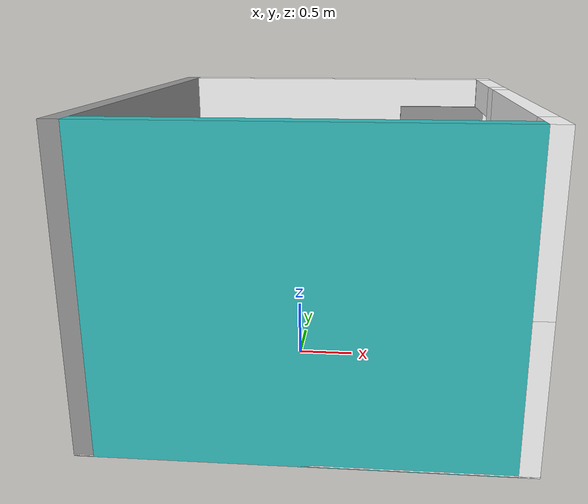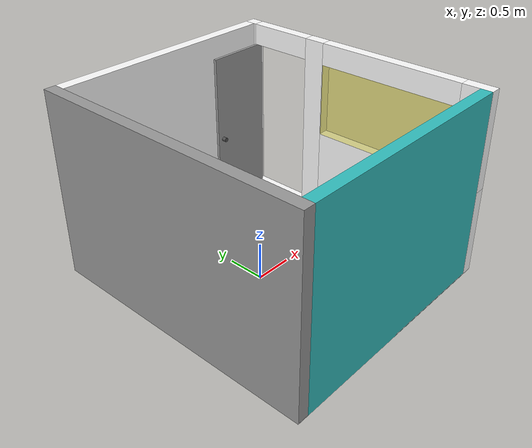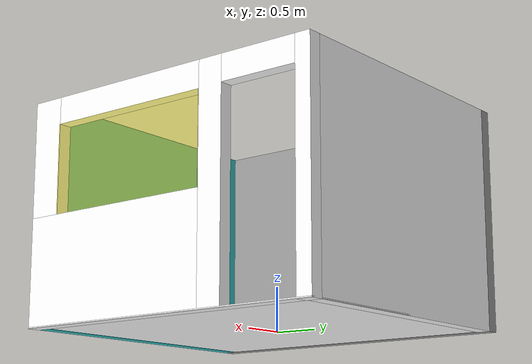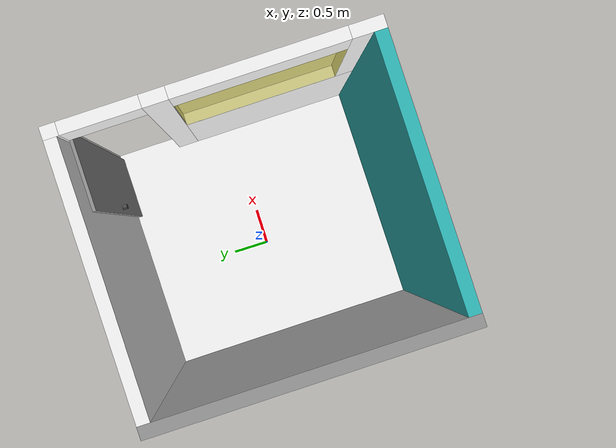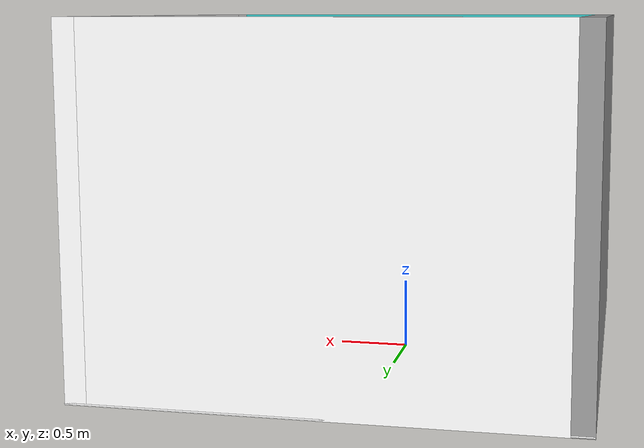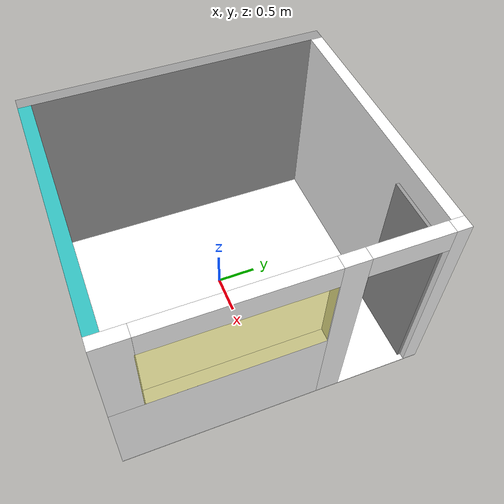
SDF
<?xml version='1.0'?>
<sdf version='1.6'>
  <model name='patient_room_small'>
    <pose frame=''>-0.37 0 0 0 0 1.571</pose>
    <link name='Floor'>
      <collision name='Floor_Collision'>
        <geometry>
          <box>
            <size>3.75 3.4 0.01</size>
          </box>
        </geometry>
        <pose frame=''>0 0 0 0 -0 0</pose>
      </collision>
      <visual name='Floor_Visual'>
        <pose frame=''>0 0 0 0 -0 0</pose>
        <geometry>
          <box>
            <size>3.75 3.4 0.01</size>
          </box>
        </geometry>
        <material>
          <script>
            <uri>model://patient_room_small/materials/scripts</uri>
            <uri>model://patient_room_small/materials/textures</uri>
            <name>Floor/Image</name>
          </script>
          <ambient>1 1 1 1</ambient>
        </material>
        <meta>
          <layer>0</layer>
        </meta>
      </visual>
      <pose frame=''>0 -0.59 0.01 0 -0 0</pose>
    </link>
    <link name='Wall_0'>
      <collision name='Wall_0_Collision'>
        <geometry>
          <box>
            <size>3.75 0.15 2.5</size>
          </box>
        </geometry>
        <pose frame=''>0 0 1.25 0 -0 0</pose>
      </collision>
      <visual name='Wall_0_Visual'>
        <pose frame=''>0 0 1.25 0 -0 0</pose>
        <geometry>
          <box>
            <size>3.75 0.15 2.5</size>
          </box>
        </geometry>
        <material>
          <script>
            <uri>file://media/materials/scripts/gazebo.material</uri>
            <name>Gazebo/Grey</name>
          </script>
          <ambient>1 1 1 1</ambient>
        </material>
        <meta>
          <layer>0</layer>
        </meta>
      </visual>
      <pose frame=''>0 1.0375 0 0 -0 0</pose>
    </link>
    <link name='Wall_1'>
      <collision name='Wall_1_Collision'>
        <geometry>
          <box>
            <size>3.1 0.15 2.5</size>
          </box>
        </geometry>
        <pose frame=''>0 0 1.25 0 -0 0</pose>
      </collision>
      <visual name='Wall_1_Visual'>
        <pose frame=''>0 0 1.25 0 -0 0</pose>
        <geometry>
          <box>
            <size>3.1 0.15 2.5</size>
          </box>
        </geometry>
        <material>
          <script>
            <uri>model://patient_room_small/materials/scripts</uri>
            <uri>model://patient_room_small/materials/textures</uri>
            <name>Wall/Image</name>
          </script>
          <ambient>1 1 1 1</ambient>
        </material>
        <meta>
          <layer>0</layer>
        </meta>
      </visual>
      <pose frame=''>1.8 -0.5875 0 0 -0 -1.5708</pose>
    </link>
    <link name='Wall_2'>
      <pose frame=''>0 -2.2125 0 0 -0 3.14159</pose>
      <visual name='Wall_2_Visual_0'>
        <pose frame=''>-1.7875 0 1.25 0 -0 0</pose>
        <geometry>
          <box>
            <size>0.175 0.15 2.5</size>
          </box>
        </geometry>
        <material>
          <script>
            <uri>model://patient_room_small/materials/scripts</uri>
            <uri>model://patient_room_small/materials/textures</uri>
            <name>Wall/Image</name>
          </script>
          <ambient>1 1 1 1</ambient>
        </material>
        <meta>
          <layer>0</layer>
        </meta>
      </visual>
      <collision name='Wall_2_Collision_0'>
        <geometry>
          <box>
            <size>0.175 0.15 2.5</size>
          </box>
        </geometry>
        <pose frame=''>-1.7875 0 1.25 0 -0 0</pose>
      </collision>
      <visual name='Wall_2_Visual_1'>
        <pose frame=''>0.0875 0 0.005 0 -0 0</pose>
        <geometry>
          <box>
            <size>3.575 0.15 0.01</size>
          </box>
        </geometry>
        <material>
          <script>
            <uri>model://patient_room_small/materials/scripts</uri>
            <uri>model://patient_room_small/materials/textures</uri>
            <name>Wall/Image</name>
          </script>
          <ambient>1 1 1 1</ambient>
        </material>
        <meta>
          <layer>0</layer>
        </meta>
      </visual>
      <collision name='Wall_2_Collision_1'>
        <geometry>
          <box>
            <size>3.575 0.15 0.01</size>
          </box>
        </geometry>
        <pose frame=''>0.0875 0 0.005 0 -0 0</pose>
      </collision>
      <visual name='Wall_2_Visual_2'>
        <pose frame=''>-0.655 0 1.255 0 -0 0</pose>
        <geometry>
          <box>
            <size>0.29 0.15 2.49</size>
          </box>
        </geometry>
        <material>
          <script>
            <uri>model://patient_room_small/materials/scripts</uri>
            <uri>model://patient_room_small/materials/textures</uri>
            <name>Wall/Image</name>
          </script>
          <ambient>1 1 1 1</ambient>
        </material>
        <meta>
          <layer>0</layer>
        </meta>
      </visual>
      <collision name='Wall_2_Collision_2'>
        <geometry>
          <box>
            <size>0.29 0.15 2.49</size>
          </box>
        </geometry>
        <pose frame=''>-0.655 0 1.255 0 -0 0</pose>
      </collision>
      <visual name='Wall_2_Visual_3'>
        <pose frame=''>0.6825 0 0.605 0 -0 0</pose>
        <geometry>
          <box>
            <size>2.385 0.15 1.19</size>
          </box>
        </geometry>
        <material>
          <script>
            <uri>model://patient_room_small/materials/scripts</uri>
            <uri>model://patient_room_small/materials/textures</uri>
            <name>Wall/Image</name>
          </script>
          <ambient>1 1 1 1</ambient>
        </material>
        <meta>
          <layer>0</layer>
        </meta>
      </visual>
      <collision name='Wall_2_Collision_3'>
        <geometry>
          <box>
            <size>2.385 0.15 1.19</size>
          </box>
        </geometry>
        <pose frame=''>0.6825 0 0.605 0 -0 0</pose>
      </collision>
      <visual name='Wall_2_Visual_4'>
        <pose frame=''>1.6825 0 1.85 0 -0 0</pose>
        <geometry>
          <box>
            <size>0.385 0.15 1.3</size>
          </box>
        </geometry>
        <material>
          <script>
            <uri>model://patient_room_small/materials/scripts</uri>
            <uri>model://patient_room_small/materials/textures</uri>
            <name>Wall/Image</name>
          </script>
          <ambient>1 1 1 1</ambient>
        </material>
        <meta>
          <layer>0</layer>
        </meta>
      </visual>
      <collision name='Wall_2_Collision_4'>
        <geometry>
          <box>
            <size>0.385 0.15 1.3</size>
          </box>
        </geometry>
        <pose frame=''>1.6825 0 1.85 0 -0 0</pose>
      </collision>
      <visual name='Wall_2_Visual_5'>
        <pose frame=''>0.49 0 2.35 0 -0 0</pose>
        <geometry>
          <box>
            <size>2 0.15 0.3</size>
          </box>
        </geometry>
        <material>
          <script>
            <uri>model://patient_room_small/materials/scripts</uri>
            <uri>model://patient_room_small/materials/textures</uri>
            <name>Wall/Image</name>
          </script>
          <ambient>1 1 1 1</ambient>
        </material>
        <meta>
          <layer>0</layer>
        </meta>
      </visual>
      <collision name='Wall_2_Collision_5'>
        <geometry>
          <box>
            <size>2 0.15 0.3</size>
          </box>
        </geometry>
        <pose frame=''>0.49 0 2.35 0 -0 0</pose>
      </collision>
      <visual name='Wall_2_Visual_6'>
        <pose frame=''>-1.25 0 2.355 0 -0 0</pose>
        <geometry>
          <box>
            <size>0.9 0.15 0.29</size>
          </box>
        </geometry>
        <material>
          <script>
            <uri>model://patient_room_small/materials/scripts</uri>
            <uri>model://patient_room_small/materials/textures</uri>
            <name>Wall/Image</name>
          </script>
          <ambient>1 1 1 1</ambient>
        </material>
        <meta>
          <layer>0</layer>
        </meta>
      </visual>
      <collision name='Wall_2_Collision_6'>
        <geometry>
          <box>
            <size>0.9 0.15 0.29</size>
          </box>
        </geometry>
        <pose frame=''>-1.25 0 2.355 0 -0 0</pose>
      </collision>
      <visual name='Wall_2_Window_Visual'>
        <pose frame=''>0.50 0 1.70 0 -0 1.571</pose>
        <geometry>
          <box>
            <size>0.15 2 1</size>
          </box>
        </geometry>
        <material>
          <script>
            <uri>file://media/materials/scripts/gazebo.material</uri>
            <name>Gazebo/YellowTransparent</name>
          </script>
          <ambient>1 1 1 1</ambient>
        </material>
        <meta>
          <layer>0</layer>
        </meta>
      </visual>
      <collision name='Wall_2_Window_Collision'>
        <geometry>
          <box>
            <size>0.15 2 1</size>
          </box>
        </geometry>
        <pose frame=''>0.50 0 1.70 0 -0 1.571</pose>
      </collision>
    </link>
    <link name='Wall_3'>
      <collision name='Wall_3_Collision'>
        <geometry>
          <box>
            <size>3.1 0.15 2.5</size>
          </box>
        </geometry>
        <pose frame=''>0 0 1.25 0 -0 0</pose>
      </collision>
      <visual name='Wall_3_Visual'>
        <pose frame=''>0 0 1.25 0 -0 0</pose>
        <geometry>
          <box>
            <size>3.1 0.15 2.5</size>
          </box>
        </geometry>
        <material>
          <script>
            <uri>file://media/materials/scripts/gazebo.material</uri>
            <name>Gazebo/Turquoise</name>
          </script>
          <ambient>1 1 1 1</ambient>
        </material>
        <meta>
          <layer>0</layer>
        </meta>
      </visual>
      <pose frame=''>-1.8 -0.5875 0 0 -0 1.5708</pose>
    </link>
    <link name='Door'>
      <pose frame=''>1.68 -1.77 1.11 0 -0 0</pose>
      <collision name='Door_Collision'>
        <geometry>
          <box>
            <size>0.04 0.9 2.2</size>
          </box>
        </geometry>
        <pose frame=''>0 0 0 0 -0 0</pose>
      </collision>
      <visual name='Door_Visual'>
        <pose frame=''>0 0 0 0 -0 0</pose>
        <geometry>
          <box>
            <size>0.04 0.9 2.2</size>
          </box>
        </geometry>
        <material>
          <script>
            <uri>file://media/materials/scripts/gazebo.material</uri>
            <name>Gazebo/Gray</name>
          </script>
          <ambient>1 1 1 1</ambient>
        </material>
        <meta>
          <layer>0</layer>
        </meta>
      </visual>
      <collision name='Door_Handle_Collision'>
        <geometry>
          <cylinder>
            <radius>0.03</radius>
            <length>0.08</length>
          </cylinder>
        </geometry>
        <pose frame=''>-0.04 0.36 -0.1 0 -1.571 0</pose>
      </collision>
      <visual name='Door_Handle_Visual'>
        <pose frame=''>-0.04 0.36 -0.1 0 -1.571 0</pose>
        <geometry>
          <cylinder>
            <radius>0.03</radius>
            <length>0.08</length>
          </cylinder>
        </geometry>
        <material>
          <script>
            <uri>file://media/materials/scripts/gazebo.material</uri>
            <name>Gazebo/DarkGrey</name>
          </script>
          <ambient>1 1 1 1</ambient>
        </material>
        <meta>
          <layer>0</layer>
        </meta>
      </visual>
    </link>
    <static>1</static>
  </model>
</sdf>
